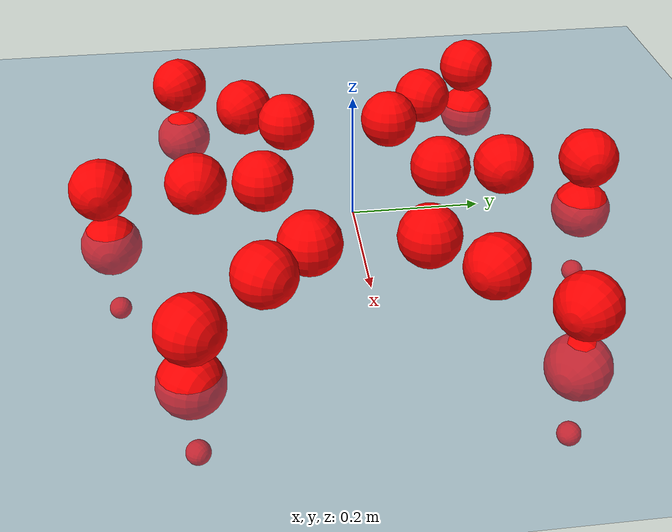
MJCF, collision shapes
<mujoco model="Golem">
  <compiler angle="radian" assetdir="assets" balanceinertia="true" inertiafromgeom="false"/>

  <option timestep="0.005" density="1.2" viscosity="2e-05"/>

  <size nkey="1"/>

  <visual>
    <quality shadowsize="8192"/>
    <map shadowclip="0.5"/>
  </visual>

  <default>
    <default class="/">
      <joint armature="0.01" damping="0.01" frictionloss="0.01"/>
      <geom contype="0" conaffinity="0" group="1" solref="-1000 -80"/>
      <site size="0.01 0.005 0.005" group="5"/>
      <general forcelimited="true" biastype="affine" gainprm="25" biasprm="0 -25 -0.5"/>
      <default class="visual">
        <geom type="mesh" group="2"/>
      </default>
      <default class="collision">
        <geom group="3"/>
      </default>
      <default class="foot">
        <geom size="0.01 0 0" condim="6" group="4" priority="1" solimp="0.015 1 0.01"/>
      </default>
      <default class="reward_collision_sphere">
        <geom group="5" rgba="1 0 0 1"/>
      </default>
    </default>
  </default>

  <asset>
    <texture type="skybox" colorspace="auto" name="//unnamed_texture_0" builtin="gradient" rgb1="0.95 0.95 0.95" rgb2="0.95 0.95 0.95" width="100" height="600"/>
    <texture type="2d" colorspace="auto" name="texplane" builtin="checker" rgb1="0.345 0.575 0.748" rgb2="0.345 0.575 0.748" markrgb="1 1 1" width="512" height="512"/>
    <material name="MatPlane" class="/" texture="texplane" texuniform="true" texrepeat="2 2" specular="0.9"/>
    <mesh name="body" class="/" file="body.stl" scale="0.001 0.001 0.001"/>
    <mesh name="coxa" class="/" file="coxa.stl" scale="0.001 0.001 0.001"/>
    <mesh name="femur" class="/" file="femur.stl" scale="0.001 0.001 0.001"/>
    <mesh name="tibia" class="/" file="tibia.stl" scale="0.001 0.001 0.001"/>
    <mesh name="tarsus" class="/" file="tarsus.stl" scale="0.001 0.001 0.001"/>
  </asset>

  <worldbody>
    <geom name="floor" class="/" size="100 100 0.125" type="plane" group="0" material="MatPlane"/>
    <light name="toplight_shadow" class="/" pos="0 0 5" dir="0.0990148 0.0990148 -0.990148" type="directional" ambient="0.04 0.04 0.04" diffuse="0.55 0.55 0.55" specular="0.12 0.12 0.12"/>
    <light name="toplight_fill" class="/" pos="0 0 5" dir="0.0990148 0.0990148 -0.990148" type="directional" castshadow="false" ambient="0.04 0.04 0.04" diffuse="0.3 0.3 0.3" specular="0.08 0.08 0.08"/>
    <body name="trunk" pos="0.0026599 -0.000721855 0.000959357" quat="0.999999 9.67741e-05 -0.000774496 0.000738788">
      <inertial pos="-0.00197236 -0.0014063 0.00563446" quat="0.99952 0.0034262 -0.0258706 0.0166855" mass="5.99242" diaginertia="0.0203616 0.0391663 0.0141282"/>
      <joint name="//unnamed_joint_0" type="free"/>
      <geom name="//unnamed_geom_1" class="/" pos="0 0 0.0688358" quat="1 0 0 0" type="mesh" rgba="0.9 0.9 0.9 1" mesh="body"/>
      <site name="imu" class="/" pos="0.148064 -0.00417663 0.110574" size="0.0118091"/>
      <camera name="track" class="/" pos="0 -2.62189 0" quat="0.707107 0.707107 0 0" mode="trackcom"/>
      <camera name="ego_camera" class="/" pos="0.150309 0 0.107556" quat="-0.5 -0.5 0.5 0.5"/>
      <body name="coxa_RR" pos="-0.206087 -0.112843 0.0725958" quat="0.38238 0.000285738 -0.000311039 -0.924005">
        <inertial pos="-0.0003572 -0.000541719 0.000195241" quat="0.999941 -0.00240872 -0.0027686 -0.0102244" mass="0.340626" diaginertia="0.0202222 0.0396165 0.0149102"/>
        <joint name="coxa_joint_RR" class="/" pos="0 0 0" axis="0.00882572 0.00034464 -0.999961" range="-3.1345 3.01632" armature="0.0120772" damping="0" frictionloss="0.0126756"/>
        <geom name="//unnamed_geom_2" class="/" type="mesh" rgba="0.2 0.2 0.2 1" mesh="coxa"/>
        <geom name="//unnamed_geom_3" class="reward_collision_sphere" size="0.0472363" pos="-0.0346866 0 0"/>
        <body name="femur_RR" pos="0.0685438 -0.00808528 -0.00773004" quat="0.499027 -0.500297 0.500835 0.499839">
          <inertial pos="-0.000380106 -0.006016 -0.0074424" quat="0.999952 0.00508812 0.00671178 -0.00496198" mass="0.329489" diaginertia="0.0201811 0.0398381 0.013577"/>
          <joint name="femur_joint_RR" class="/" pos="0 0 0" axis="0.0058115 -0.00624692 -0.999964" range="-3.09681 3.14938" armature="0.0124242" damping="0" frictionloss="0.0073244"/>
          <geom name="//unnamed_geom_4" class="/" type="mesh" rgba="0.9 0.9 0.9 1" mesh="femur"/>
          <geom name="//unnamed_geom_5" class="reward_collision_sphere" size="0.0472363"/>
          <body name="tibia_RR" pos="-0.00130391 -0.148091 0.00776087" quat="-0.000386508 0.999999 0.000978484 -0.000536461">
            <inertial pos="-0.00133526 0.00674112 -0.00272926" quat="0.999938 0.00795403 -0.00269086 -0.00735384" mass="0.326452" diaginertia="0.0210546 0.0389919 0.0142846"/>
            <joint name="tibia_joint_RR" class="/" pos="0 0 0" axis="0.0029642 -0.00289125 0.999991" stiffness="0.00530182" range="-3.13933 3.14986" armature="0.0131761" damping="0" frictionloss="0.0130464"/>
            <geom name="//unnamed_geom_6" class="/" type="mesh" rgba="0.2 0.2 0.2 1" mesh="tibia"/>
            <geom name="//unnamed_geom_7" class="reward_collision_sphere" size="0.0472363"/>
            <body name="tarsus_RR" pos="0.106062 0.0021208 0.000459087" quat="0.999999 -0.000677794 0.00100464 -0.000218077">
              <inertial pos="0.0715651 0.00363971 -0.00133782" quat="0.495923 0.50349 0.503216 0.497325" mass="0.323415" diaginertia="0.0196543 0.038941 0.0151415"/>
              <joint name="tarsus_joint_RR" class="/" pos="0 0 0" axis="-0.00662397 0.00409369 0.99997" range="-2.99302 2.98266" armature="0.0130917" damping="0" frictionloss="0.0125824"/>
              <geom name="//unnamed_geom_8" class="/" type="mesh" rgba="0.9 0.9 0.9 1" mesh="tarsus"/>
              <geom name="foot_1" class="foot" size="0.0107623" pos="0.129497 0 0" quat="0 -0.707107 0 0.707107"/>
              <geom name="//unnamed_geom_10" class="reward_collision_sphere" size="0.0472363"/>
              <geom name="//unnamed_geom_11" class="reward_collision_sphere" size="0.0177136" pos="0.124294 0 0"/>
              <site name="foot_1" class="foot" pos="0.129497 0 0" quat="0 -0.707107 0 0.707107" size="0.0118091"/>
            </body>
          </body>
        </body>
      </body>
      <body name="coxa_RM" pos="0.00598473 -0.174194 0.0729882" quat="0.707085 0.000179228 -9.54904e-05 -0.707129">
        <inertial pos="0.00241436 0.00165661 0.00234412" quat="0.9994 -0.0186027 -0.0198425 0.0214655" mass="0.320046" diaginertia="0.0198892 0.038575 0.0133998"/>
        <joint name="coxa_joint_RM" class="/" pos="0 0 0" axis="0.00642507 -0.00314693 -0.999974" range="-3.1764 3.18099" armature="0.0117517" damping="0.0223848" frictionloss="0.0104718"/>
        <geom name="//unnamed_geom_12" class="/" type="mesh" rgba="0.2 0.2 0.2 1" mesh="coxa"/>
        <geom name="//unnamed_geom_13" class="reward_collision_sphere" size="0.0472363" pos="-0.0346866 0 0"/>
        <body name="femur_RM" pos="0.0665789 0.000470157 0.00384856" quat="0.49748 -0.500784 0.500738 0.50099">
          <inertial pos="0.00630436 0.00134378 0.0076313" quat="0.999936 -0.00854389 -0.00218018 -0.00703076" mass="0.311162" diaginertia="0.0201696 0.0389523 0.0143748"/>
          <joint name="femur_joint_RM" class="/" pos="0 0 0" axis="-0.00478397 0.00149766 -0.999987" range="-3.10788 3.01912" armature="0.0120967" damping="0.0241868" frictionloss="0.015007"/>
          <geom name="//unnamed_geom_14" class="/" type="mesh" rgba="0.9 0.9 0.9 1" mesh="femur"/>
          <geom name="//unnamed_geom_15" class="reward_collision_sphere" size="0.0472363"/>
          <body name="tibia_RM" pos="0.00344627 -0.143098 -0.0074889" quat="3.34158e-05 1 0.000339091 0.000154166">
            <inertial pos="0.00176172 0.00156134 -0.00193318" quat="1 0.000751172 0.000173861 -8.64203e-05" mass="0.339424" diaginertia="0.0200393 0.038125 0.0148619"/>
            <joint name="tibia_joint_RM" class="/" pos="0 0 0" axis="-0.013926 0.0270005 0.999538" range="-3.1315 3.2374" armature="0.0104604" damping="0.0112511" frictionloss="0.0116287"/>
            <geom name="//unnamed_geom_16" class="/" type="mesh" rgba="0.2 0.2 0.2 1" mesh="tibia"/>
            <geom name="//unnamed_geom_17" class="reward_collision_sphere" size="0.0472363"/>
            <body name="tarsus_RM" pos="0.10484 -0.00419406 0.00601843" quat="0.999999 0.000326556 -0.00083503 0.000764879">
              <inertial pos="0.0677746 0.00124618 -0.00260226" quat="0.487188 0.512129 0.500818 0.499553" mass="0.33031" diaginertia="0.0203342 0.0392739 0.0158404"/>
              <joint name="tarsus_joint_RM" class="/" pos="0 0 0" axis="0.00159725 0.00166937 0.999997" stiffness="0.0056941" range="-3.03736 3.27196" armature="0.0123042" damping="0" frictionloss="0.0108705"/>
              <geom name="//unnamed_geom_18" class="/" type="mesh" rgba="0.9 0.9 0.9 1" mesh="tarsus"/>
              <geom name="foot_2" class="foot" size="0.0121757" pos="0.129497 0 0" quat="0 -0.707107 0 0.707107"/>
              <geom name="//unnamed_geom_20" class="reward_collision_sphere" size="0.0472363"/>
              <geom name="//unnamed_geom_21" class="reward_collision_sphere" size="0.0177136" pos="0.124294 0 0"/>
              <site name="foot_2" class="foot" pos="0.129497 0 0" quat="0 -0.707107 0 0.707107" size="0.0118091"/>
            </body>
          </body>
        </body>
      </body>
      <body name="coxa_RF" pos="0.208643 -0.109202 0.0738336" quat="0.923617 -9.11041e-05 -0.000176759 -0.383317">
        <inertial pos="0.000647507 0.00839768 0.00188016" quat="0.999981 -0.00181776 0.00558206 0.00182008" mass="0.317345" diaginertia="0.0200439 0.0389335 0.0144603"/>
        <joint name="coxa_joint_RF" class="/" pos="0 0 0" axis="-0.00133713 0.00374487 -0.999992" range="-3.13498 3.07973" armature="0.0105332" damping="0.0230559" frictionloss="0.0116354"/>
        <geom name="//unnamed_geom_22" class="/" type="mesh" rgba="0.2 0.2 0.2 1" mesh="coxa"/>
        <geom name="//unnamed_geom_23" class="reward_collision_sphere" size="0.0472363" pos="-0.0346866 0 0"/>
        <body name="femur_RF" pos="0.0620139 0.000916708 0.0013691" quat="0.499287 -0.500474 0.49971 0.500529">
          <inertial pos="0.00252484 -5.45545e-06 -0.00399265" quat="0.999976 -0.00691246 -0.000426328 0.00055366" mass="0.33811" diaginertia="0.0204538 0.0416824 0.0138776"/>
          <joint name="femur_joint_RF" class="/" pos="0 0 0" axis="-0.00150353 0.00459577 -0.999988" stiffness="0.000254502" range="-3.26051 3.17335" armature="0.0116483" damping="0.0118114" frictionloss="0.0137822"/>
          <geom name="//unnamed_geom_24" class="/" type="mesh" rgba="0.9 0.9 0.9 1" mesh="femur"/>
          <geom name="//unnamed_geom_25" class="reward_collision_sphere" size="0.0472363"/>
          <body name="tibia_RF" pos="0.00310534 -0.141214 -0.000438118" quat="-0.000131616 1 0.000424031 3.53021e-06">
            <inertial pos="-0.00270586 0.000842267 0.000107942" quat="0.999397 -0.0290528 0.00591373 -0.0180995" mass="0.30845" diaginertia="0.0212507 0.0390758 0.0142037"/>
            <joint name="tibia_joint_RF" class="/" pos="0 0 0" axis="0.0171789 0.0081293 0.999819" range="-3.13814 3.14053" armature="0.0130216" damping="0" frictionloss="0.0105503"/>
            <geom name="//unnamed_geom_26" class="/" type="mesh" rgba="0.2 0.2 0.2 1" mesh="tibia"/>
            <geom name="//unnamed_geom_27" class="reward_collision_sphere" size="0.0472363"/>
            <body name="tarsus_RF" pos="0.0942499 -0.00029807 0.00844999" quat="1 6.25665e-05 0.000294475 -0.00062285">
              <inertial pos="0.0696144 0.00496625 0.000889625" quat="0.496389 0.501012 0.4995 0.503076" mass="0.357843" diaginertia="0.0206213 0.0408596 0.0142576"/>
              <joint name="tarsus_joint_RF" class="/" pos="0 0 0" axis="-0.0197627 -0.00937258 0.999761" range="-3.06795 3.13658" armature="0.0121295" damping="0" frictionloss="0.0110957"/>
              <geom name="//unnamed_geom_28" class="/" type="mesh" rgba="0.9 0.9 0.9 1" mesh="tarsus"/>
              <geom name="foot_3" class="foot" size="0.0126197" pos="0.129497 0 0" quat="0 -0.707107 0 0.707107"/>
              <geom name="//unnamed_geom_30" class="reward_collision_sphere" size="0.0472363"/>
              <geom name="//unnamed_geom_31" class="reward_collision_sphere" size="0.0177136" pos="0.124294 0 0"/>
              <site name="foot_3" class="foot" pos="0.129497 0 0" quat="0 -0.707107 0 0.707107" size="0.0118091"/>
            </body>
          </body>
        </body>
      </body>
      <body name="coxa_LR" pos="-0.206976 0.110409 0.0658593" quat="0.382925 -0.00013286 -0.000199827 0.92378">
        <inertial pos="-0.00154795 -0.00163346 -0.00474654" quat="0.999939 -0.00461393 -0.00846428 0.00538271" mass="0.326706" diaginertia="0.0207056 0.0380705 0.0157005"/>
        <joint name="coxa_joint_LR" class="/" pos="0 0 0" axis="0.00211597 0.0152113 -0.999882" stiffness="0.0160403" range="-3.12707 3.1552" armature="0.0117052" damping="0.041676" frictionloss="0.0155845"/>
        <geom name="//unnamed_geom_32" class="/" type="mesh" rgba="0.2 0.2 0.2 1" mesh="coxa"/>
        <geom name="//unnamed_geom_33" class="reward_collision_sphere" size="0.0472363" pos="-0.0346866 0 0"/>
        <body name="femur_LR" pos="0.0686365 0.0028302 0.00238834" quat="0.499735 -0.500383 0.499287 0.500594">
          <inertial pos="-0.00547701 2.39348e-05 -0.00320341" quat="0.999995 0.00218787 0.000200749 0.00236516" mass="0.358595" diaginertia="0.0199335 0.0380247 0.0138439"/>
          <joint name="femur_joint_LR" class="/" pos="0 0 0" axis="0.00300985 0.014149 0.999895" stiffness="0.00122587" range="-2.99155 3.2585" armature="0.0154853" damping="0.0223153" frictionloss="0.012367"/>
          <geom name="//unnamed_geom_34" class="/" type="mesh" rgba="0.9 0.9 0.9 1" mesh="femur"/>
          <geom name="//unnamed_geom_35" class="reward_collision_sphere" size="0.0472363"/>
          <body name="tibia_LR" pos="-0.00550726 -0.14152 -0.00113372" quat="-0.000298539 1 0.00033278 -0.00025903">
            <inertial pos="-0.00109632 0.00362571 0.00103123" quat="0.999998 0.000360276 0.00191546 -0.00104561" mass="0.307939" diaginertia="0.0207489 0.0358493 0.0145271"/>
            <joint name="tibia_joint_LR" class="/" pos="0 0 0" axis="-4.31198e-05 0.0255259 -0.999674" stiffness="0.00754112" range="-3.09083 3.23248" armature="0.0114904" damping="0" frictionloss="0.0120399"/>
            <geom name="//unnamed_geom_36" class="/" type="mesh" rgba="0.2 0.2 0.2 1" mesh="tibia"/>
            <geom name="//unnamed_geom_37" class="reward_collision_sphere" size="0.0472363"/>
            <body name="tarsus_LR" pos="0.0942416 0.00487886 0.00239433" quat="0.999995 0.00114472 -0.0015253 -0.00238797">
              <inertial pos="0.0739651 0.00427926 -0.00148689" quat="0.499418 0.500218 0.500941 0.499421" mass="0.327854" diaginertia="0.020023 0.0402753 0.0137399"/>
              <joint name="tarsus_joint_LR" class="/" pos="0 0 0" axis="-0.000144808 -8.29599e-05 -1" stiffness="0.0118922" range="-3.16801 3.17782" armature="0.0118303" damping="0.0334056" frictionloss="0.00863266"/>
              <geom name="//unnamed_geom_38" class="/" type="mesh" rgba="0.9 0.9 0.9 1" mesh="tarsus"/>
              <geom name="foot_4" class="foot" size="0.0127947" pos="0.129497 0 0" quat="0.707107 0 -0.707107 0"/>
              <geom name="//unnamed_geom_40" class="reward_collision_sphere" size="0.0472363"/>
              <geom name="//unnamed_geom_41" class="reward_collision_sphere" size="0.0177136" pos="0.124294 0 0"/>
              <site name="foot_4" class="foot" pos="0.129497 0 0" quat="0.707107 0 -0.707107 0" size="0.0118091"/>
            </body>
          </body>
        </body>
      </body>
      <body name="coxa_LM" pos="-0.000688944 0.172682 0.0744687" quat="0.70713 2.71084e-05 -0.00034561 0.707084">
        <inertial pos="-0.00510073 -3.58506e-05 0.00107686" quat="0.999995 0.00199066 -0.00151606 -0.00212236" mass="0.350128" diaginertia="0.019788 0.041103 0.0150045"/>
        <joint name="coxa_joint_LM" class="/" pos="0 0 0" axis="-0.000866461 -0.0136808 -0.999906" range="-3.09366 3.13474" armature="0.0124794" damping="0.0112742" frictionloss="0.012905"/>
        <geom name="//unnamed_geom_42" class="/" type="mesh" rgba="0.2 0.2 0.2 1" mesh="coxa"/>
        <geom name="//unnamed_geom_43" class="reward_collision_sphere" size="0.0472363" pos="-0.0346866 0 0"/>
        <body name="femur_LM" pos="0.0661694 -0.000194293 -0.00389194" quat="0.500001 -0.500001 0.499997 0.500001">
          <inertial pos="-0.00228662 -0.000984992 0.00114079" quat="0.999988 -0.00327345 0.000269832 0.00372904" mass="0.315339" diaginertia="0.0219547 0.0363783 0.0130436"/>
          <joint name="femur_joint_LM" class="/" pos="0 0 0" axis="-0.00697487 -0.0322356 0.999456" stiffness="0.0138417" range="-3.26417 3.14738" armature="0.0105089" damping="0.0483008" frictionloss="0.0118671"/>
          <geom name="//unnamed_geom_44" class="/" type="mesh" rgba="0.9 0.9 0.9 1" mesh="femur"/>
          <geom name="//unnamed_geom_45" class="reward_collision_sphere" size="0.0472363"/>
          <body name="tibia_LM" pos="0.00137787 -0.139654 0.00330957" quat="0.000268139 1 -5.25212e-05 -0.000242442">
            <inertial pos="0.00625099 0.000425235 -0.000304068" quat="0.999988 0.000484253 0.00424849 0.00227844" mass="0.346112" diaginertia="0.0213358 0.0405154 0.0144739"/>
            <joint name="tibia_joint_LM" class="/" pos="0 0 0" axis="-0.000484652 -0.00163769 -0.999999" range="-3.11205 3.14706" armature="0.0135116" damping="0" frictionloss="0.0166528"/>
            <geom name="//unnamed_geom_46" class="/" type="mesh" rgba="0.2 0.2 0.2 1" mesh="tibia"/>
            <geom name="//unnamed_geom_47" class="reward_collision_sphere" size="0.0472363"/>
            <body name="tarsus_LM" pos="0.0953623 -0.00265763 -0.00106792" quat="1 -0.000160252 4.12496e-05 -0.000543638">
              <inertial pos="0.0733676 0.00114964 0.00214126" quat="0.511822 0.509697 0.482887 0.495043" mass="0.332459" diaginertia="0.0214876 0.0386879 0.0149002"/>
              <joint name="tarsus_joint_LM" class="/" pos="0 0 0" axis="0.0126729 0.00278918 -0.999916" range="-3.21094 3.14202" armature="0.0123738" damping="0" frictionloss="0.0131158"/>
              <geom name="//unnamed_geom_48" class="/" type="mesh" rgba="0.9 0.9 0.9 1" mesh="tarsus"/>
              <geom name="foot_5" class="foot" size="0.00815504" pos="0.129497 0 0" quat="0.707107 0 -0.707107 0"/>
              <geom name="//unnamed_geom_50" class="reward_collision_sphere" size="0.0472363"/>
              <geom name="//unnamed_geom_51" class="reward_collision_sphere" size="0.0177136" pos="0.124294 0 0"/>
              <site name="foot_5" class="foot" pos="0.129497 0 0" quat="0.707107 0 -0.707107 0" size="0.0118091"/>
            </body>
          </body>
        </body>
      </body>
      <body name="coxa_LF" pos="0.206421 0.110796 0.0697365" quat="0.923897 8.71318e-05 -1.26966e-05 0.382641">
        <inertial pos="0.000471719 0.0073137 0.00129381" quat="0.99964 -0.0195999 0.00747318 -0.0167078" mass="0.302135" diaginertia="0.0182901 0.0341358 0.0126612"/>
        <joint name="coxa_joint_LF" class="/" pos="0 0 0" axis="-0.00439496 -0.00895803 -0.99995" stiffness="0.0159135" range="-3.2048 3.13196" armature="0.0112842" damping="0" frictionloss="0.0144345"/>
        <geom name="//unnamed_geom_52" class="/" type="mesh" rgba="0.2 0.2 0.2 1" mesh="coxa"/>
        <geom name="//unnamed_geom_53" class="reward_collision_sphere" size="0.0472363" pos="-0.0346866 0 0"/>
        <body name="femur_LF" pos="0.0743466 0.00279788 -0.0073542" quat="0.500446 -0.499662 0.500132 0.499759">
          <inertial pos="0.000110965 -0.00232909 0.00517533" quat="0.999965 0.00185041 0.00225829 0.00785627" mass="0.319683" diaginertia="0.0204167 0.0381788 0.0147315"/>
          <joint name="femur_joint_LF" class="/" pos="0 0 0" axis="-0.00723837 0.00157961 0.999973" stiffness="0.042139" range="-3.17542 3.14466" armature="0.0104568" damping="0.0254679" frictionloss="0.0119532"/>
          <geom name="//unnamed_geom_54" class="/" type="mesh" rgba="0.9 0.9 0.9 1" mesh="femur"/>
          <geom name="//unnamed_geom_55" class="reward_collision_sphere" size="0.0472363"/>
          <body name="tibia_LF" pos="0.00296949 -0.139754 0.000493603" quat="0.000388116 1 -0.000457837 0.000388265">
            <inertial pos="-0.00618712 -0.00620122 -0.00775357" quat="0.999991 0.000289326 -0.00225594 -0.00352142" mass="0.335814" diaginertia="0.0215585 0.0383234 0.0132551"/>
            <joint name="tibia_joint_LF" class="/" pos="0 0 0" axis="1.00834e-05 8.74357e-05 -1" range="-3.1936 3.2625" armature="0.0106791" damping="0.0160236" frictionloss="0.0131166"/>
            <geom name="//unnamed_geom_56" class="/" type="mesh" rgba="0.2 0.2 0.2 1" mesh="tibia"/>
            <geom name="//unnamed_geom_57" class="reward_collision_sphere" size="0.0472363"/>
            <body name="tarsus_LF" pos="0.104681 -0.00238741 0.000394625" quat="1 4.9678e-05 -2.63703e-05 8.77193e-05">
              <inertial pos="0.0719352 -0.000819501 -0.00613451" quat="0.504877 0.515497 0.490657 0.488485" mass="0.336767" diaginertia="0.0196135 0.0392329 0.0132472"/>
              <joint name="tarsus_joint_LF" class="/" pos="0 0 0" axis="0.000988246 0.00159484 -0.999998" range="-3.04675 3.26964" armature="0.0109539" damping="0.0231189" frictionloss="0.0109809"/>
              <geom name="//unnamed_geom_58" class="/" type="mesh" rgba="0.9 0.9 0.9 1" mesh="tarsus"/>
              <geom name="foot_6" class="foot" size="0.0107369" pos="0.129497 0 0" quat="0.707107 0 -0.707107 0"/>
              <geom name="//unnamed_geom_60" class="reward_collision_sphere" size="0.0472363"/>
              <geom name="//unnamed_geom_61" class="reward_collision_sphere" size="0.0177136" pos="0.124294 0 0"/>
              <site name="foot_6" class="foot" pos="0.129497 0 0" quat="0.707107 0 -0.707107 0" size="0.0118091"/>
            </body>
          </body>
        </body>
      </body>
    </body>
  </worldbody>

  <contact>
    <pair class="/" geom1="floor" geom2="foot_1" name="//unnamed_contact_0"/>
    <pair class="/" geom1="floor" geom2="foot_2" name="//unnamed_contact_1"/>
    <pair class="/" geom1="floor" geom2="foot_3" name="//unnamed_contact_2"/>
    <pair class="/" geom1="floor" geom2="foot_4" name="//unnamed_contact_3"/>
    <pair class="/" geom1="floor" geom2="foot_5" name="//unnamed_contact_4"/>
    <pair class="/" geom1="floor" geom2="foot_6" name="//unnamed_contact_5"/>
  </contact>

  <actuator>
    <general name="coxa_joint_RR" class="/" joint="coxa_joint_RR" forcerange="-8.04263 8.04263" gainprm="23.785" biasprm="0 -23.785 -0.576015"/>
    <general name="femur_joint_RR" class="/" joint="femur_joint_RR" forcerange="-8.82931 8.82931" gainprm="23.785" biasprm="0 -23.785 -0.576015"/>
    <general name="tibia_joint_RR" class="/" joint="tibia_joint_RR" forcerange="-8.59533 8.59533" gainprm="23.785" biasprm="0 -23.785 -0.576015"/>
    <general name="tarsus_joint_RR" class="/" joint="tarsus_joint_RR" forcerange="-9.32348 9.32348" gainprm="23.785" biasprm="0 -23.785 -0.576015"/>
    <general name="coxa_joint_RM" class="/" joint="coxa_joint_RM" forcerange="-7.92672 7.92672" gainprm="23.785" biasprm="0 -23.785 -0.576015"/>
    <general name="femur_joint_RM" class="/" joint="femur_joint_RM" forcerange="-8.8377 8.8377" gainprm="23.785" biasprm="0 -23.785 -0.576015"/>
    <general name="tibia_joint_RM" class="/" joint="tibia_joint_RM" forcerange="-8.86005 8.86005" gainprm="23.785" biasprm="0 -23.785 -0.576015"/>
    <general name="tarsus_joint_RM" class="/" joint="tarsus_joint_RM" forcerange="-9.76357 9.76357" gainprm="23.785" biasprm="0 -23.785 -0.576015"/>
    <general name="coxa_joint_RF" class="/" joint="coxa_joint_RF" forcerange="-7.95689 7.95689" gainprm="23.785" biasprm="0 -23.785 -0.576015"/>
    <general name="femur_joint_RF" class="/" joint="femur_joint_RF" forcerange="-8.50016 8.50016" gainprm="23.785" biasprm="0 -23.785 -0.576015"/>
    <general name="tibia_joint_RF" class="/" joint="tibia_joint_RF" forcerange="-8.48151 8.48151" gainprm="23.785" biasprm="0 -23.785 -0.576015"/>
    <general name="tarsus_joint_RF" class="/" joint="tarsus_joint_RF" forcerange="-8.10479 8.10479" gainprm="23.785" biasprm="0 -23.785 -0.576015"/>
    <general name="coxa_joint_LR" class="/" joint="coxa_joint_LR" forcerange="-8.39255 8.39255" gainprm="23.785" biasprm="0 -23.785 -0.576015"/>
    <general name="femur_joint_LR" class="/" joint="femur_joint_LR" forcerange="-10.1705 10.1705" gainprm="23.785" biasprm="0 -23.785 -0.576015"/>
    <general name="tibia_joint_LR" class="/" joint="tibia_joint_LR" forcerange="-9.33254 9.33254" gainprm="23.785" biasprm="0 -23.785 -0.576015"/>
    <general name="tarsus_joint_LR" class="/" joint="tarsus_joint_LR" forcerange="-8.60463 8.60463" gainprm="23.785" biasprm="0 -23.785 -0.576015"/>
    <general name="coxa_joint_LM" class="/" joint="coxa_joint_LM" forcerange="-8.32602 8.32602" gainprm="23.785" biasprm="0 -23.785 -0.576015"/>
    <general name="femur_joint_LM" class="/" joint="femur_joint_LM" forcerange="-8.81954 8.81954" gainprm="23.785" biasprm="0 -23.785 -0.576015"/>
    <general name="tibia_joint_LM" class="/" joint="tibia_joint_LM" forcerange="-8.581 8.581" gainprm="23.785" biasprm="0 -23.785 -0.576015"/>
    <general name="tarsus_joint_LM" class="/" joint="tarsus_joint_LM" forcerange="-8.10211 8.10211" gainprm="23.785" biasprm="0 -23.785 -0.576015"/>
    <general name="coxa_joint_LF" class="/" joint="coxa_joint_LF" forcerange="-8.26452 8.26452" gainprm="23.785" biasprm="0 -23.785 -0.576015"/>
    <general name="femur_joint_LF" class="/" joint="femur_joint_LF" forcerange="-7.58977 7.58977" gainprm="23.785" biasprm="0 -23.785 -0.576015"/>
    <general name="tibia_joint_LF" class="/" joint="tibia_joint_LF" forcerange="-8.61751 8.61751" gainprm="23.785" biasprm="0 -23.785 -0.576015"/>
    <general name="tarsus_joint_LF" class="/" joint="tarsus_joint_LF" forcerange="-11.2293 11.2293" gainprm="23.785" biasprm="0 -23.785 -0.576015"/>
  </actuator>

  <sensor>
    <gyro site="imu" name="imu_angular_velocity"/>
    <velocimeter site="imu" name="imu_linear_velocity"/>
    <framelinvel objtype="site" objname="foot_1" name="foot_1_global_linear_velocity"/>
    <framelinvel objtype="site" objname="foot_2" name="foot_2_global_linear_velocity"/>
    <framelinvel objtype="site" objname="foot_3" name="foot_3_global_linear_velocity"/>
    <framelinvel objtype="site" objname="foot_4" name="foot_4_global_linear_velocity"/>
    <framelinvel objtype="site" objname="foot_5" name="foot_5_global_linear_velocity"/>
    <framelinvel objtype="site" objname="foot_6" name="foot_6_global_linear_velocity"/>
  </sensor>

  <keyframe>
    <key name="home" qpos="0 0 0.1457 1 0 0 0 0 0 0 0 0 0 0 0 0 0 0 0 0 0 0 0 0 0 0 0 0 0 0 0"/>
  </keyframe>
</mujoco>
